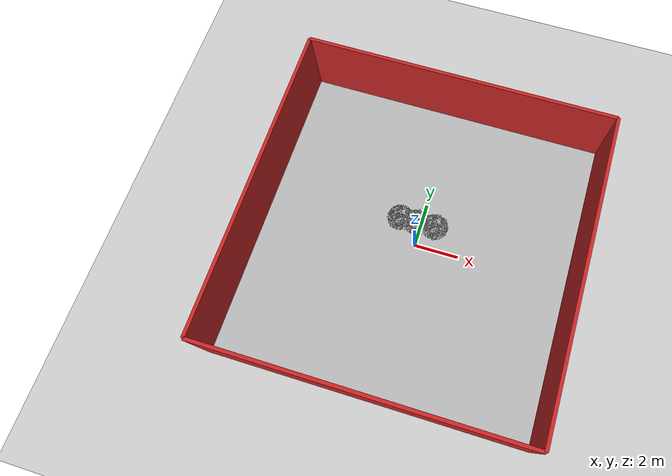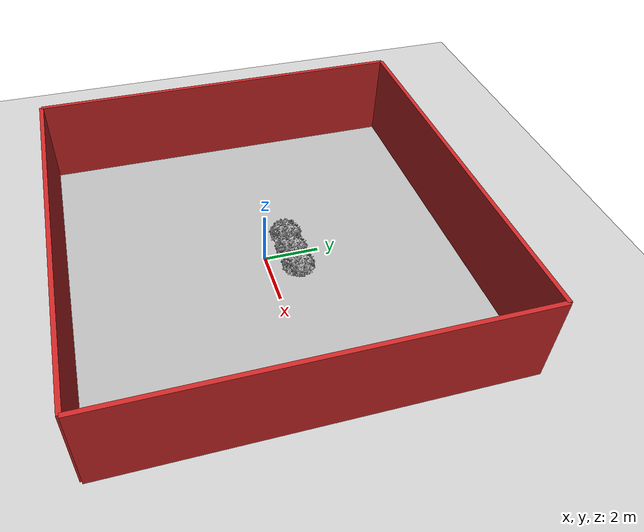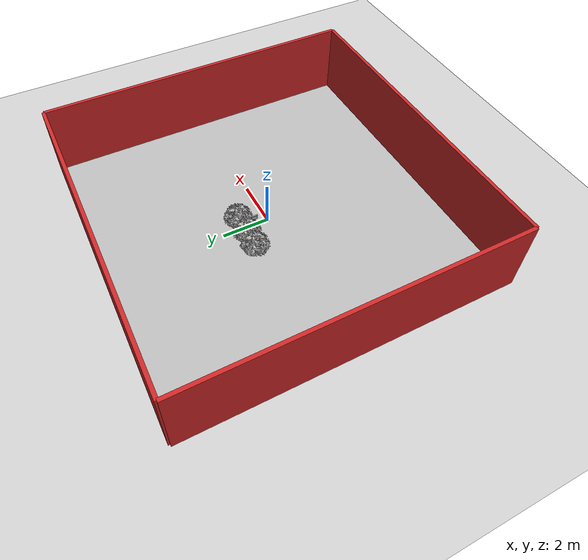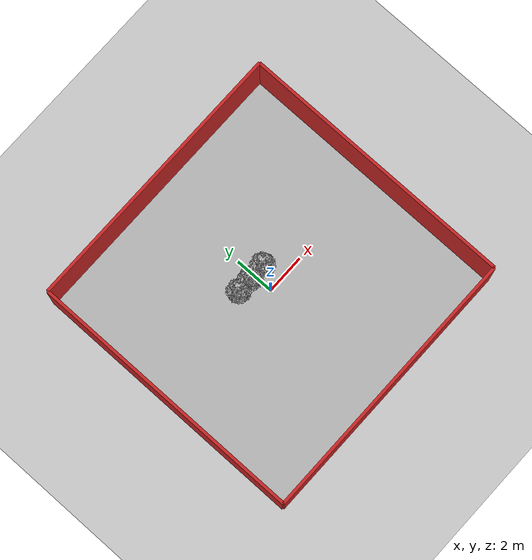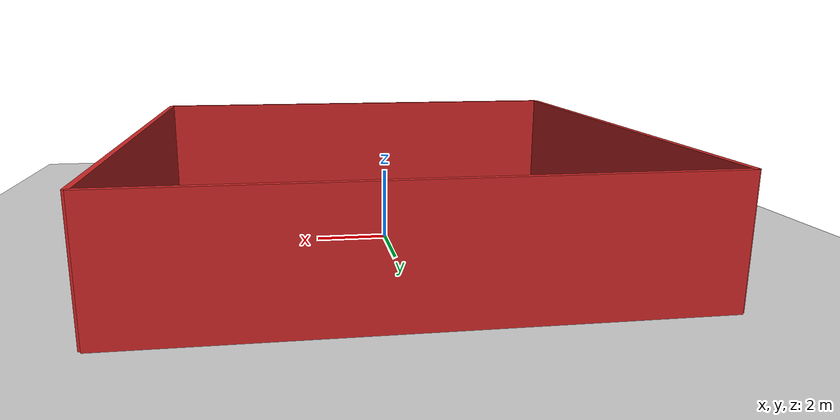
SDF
<sdf version="1.7">
 <world name="default">
  <model name="ground_plane">
   <static>1</static>
   <link name="link">
    <collision name="collision">
     <geometry><plane><normal>0 0 1</normal><size>100 100</size></plane></geometry>
     <surface>
      <contact><collide_bitmask>65535</collide_bitmask></contact>
      <friction><ode><mu>100</mu><mu2>50</mu2></ode></friction>
     </surface>
    </collision>
    <visual name="visual">
     <cast_shadows>0</cast_shadows>
     <geometry><plane><normal>0 0 1</normal><size>100 100</size></plane></geometry>
     <material>
      <script><uri>file://media/materials/scripts/gazebo.material</uri><name>Gazebo/Grey</name></script>
     </material>
    </visual>
   </link>
  </model>
  <model name="paredladrillo">
   <pose>-0.015788 -0.036133 0 0 -0 0</pose>
   <link name="Wall_0">
    <collision name="Wall_0_Collision">
     <geometry><box><size>14 0.15 4</size></box></geometry>
     <pose>0 0 1.25 0 -0 0</pose>
    </collision>
    <visual name="Wall_0_Visual">
     <pose>0 0 1.25 0 -0 0</pose>
     <geometry><box><size>14 0.15 4</size></box></geometry>
     <material>
      <script>
       <uri>model://paredladrillo/materials/scripts</uri>
       <uri>model://paredladrillo/materials/textures</uri>
       <name>textur/pared</name>
      </script>
      <ambient>1 1 1 1</ambient>
     </material>
     <meta><layer>0</layer></meta>
    </visual>
    <pose>-7 -0 0 0 -0 1.5708</pose>
   </link>
   <link name="Wall_1">
    <collision name="Wall_1_Collision">
     <geometry><box><size>14 0.15 4</size></box></geometry>
     <pose>0 0 1.25 0 -0 0</pose>
    </collision>
    <visual name="Wall_1_Visual">
     <pose>0 0 1.25 0 -0 0</pose>
     <geometry><box><size>14 0.15 4</size></box></geometry>
     <material>
      <script>
       <uri>model://paredladrillo/materials/scripts</uri>
       <uri>model://paredladrillo/materials/textures</uri>
       <name>textur/pared</name>
      </script>
      <ambient>1 1 1 1</ambient>
     </material>
     <meta><layer>0</layer></meta>
    </visual>
    <pose>1e-06 7 0 0 -0 0</pose>
   </link>
   <link name="Wall_2">
    <collision name="Wall_2_Collision">
     <geometry><box><size>14 0.15 4</size></box></geometry>
     <pose>0 0 1.25 0 -0 0</pose>
    </collision>
    <visual name="Wall_2_Visual">
     <pose>0 0 1.25 0 -0 0</pose>
     <geometry><box><size>14 0.15 4</size></box></geometry>
     <material>
      <script>
       <uri>model://paredladrillo/materials/scripts</uri>
       <uri>model://paredladrillo/materials/textures</uri>
       <name>textur/pared</name>
      </script>
      <ambient>1 1 1 1</ambient>
     </material>
     <meta><layer>0</layer></meta>
    </visual>
    <pose>7 -0 0 0 -0 -1.5708</pose>
   </link>
   <link name="Wall_3">
    <collision name="Wall_3_Collision">
     <geometry><box><size>14 0.15 4</size></box></geometry>
     <pose>0 0 1.25 0 -0 0</pose>
    </collision>
    <visual name="Wall_3_Visual">
     <pose>0 0 1.25 0 -0 0</pose>
     <geometry><box><size>14 0.15 4</size></box></geometry>
     <material>
      <script>
       <uri>model://paredladrillo/materials/scripts</uri>
       <uri>model://paredladrillo/materials/textures</uri>
       <name>textur/pared</name>
      </script>
      <ambient>1 1 1 1</ambient>
     </material>
     <meta><layer>0</layer></meta>
    </visual>
    <pose>1e-06 -7 0 0 -0 3.14159</pose>
   </link>
   <static>1</static>
  </model>
  <model name="abbfre_0">
   <link name="link_0">
    <inertial>
     <mass>1</mass>
     <inertia>
      <ixx>0.166667</ixx>
      <ixy>0</ixy>
      <ixz>0</ixz>
      <iyy>0.166667</iyy>
      <iyz>0</iyz>
      <izz>0.166667</izz>
     </inertia>
    </inertial>
    <pose>0 0 -0 1.60917 -0 0</pose>
    <visual name="visual">
     <geometry><mesh><uri>model://abbfre/meshes/arbufres.obj</uri><scale>1 1 1</scale></mesh></geometry>
    </visual>
    <collision name="collision">
     <geometry><mesh><uri>model://abbfre/meshes/arbufres.obj</uri><scale>1 1 1</scale></mesh></geometry>
     <surface>
      <friction>
       <ode><mu>1</mu><mu2>1</mu2><fdir1>0 0 0</fdir1><slip1>0</slip1><slip2>0</slip2></ode>
       <torsional>
        <coefficient>1</coefficient>
        <patch_radius>0</patch_radius>
        <surface_radius>0</surface_radius>
        <use_patch_radius>1</use_patch_radius>
        <ode><slip>0</slip></ode>
       </torsional>
      </friction>
      <bounce><restitution_coefficient>0</restitution_coefficient><threshold>1e+06</threshold></bounce>
      <contact>
       <collide_without_contact>0</collide_without_contact>
       <collide_without_contact_bitmask>1</collide_without_contact_bitmask>
       <collide_bitmask>1</collide_bitmask>
       <ode>
        <soft_cfm>0</soft_cfm>
        <soft_erp>0.2</soft_erp>
        <kp>1e+13</kp>
        <kd>1</kd>
        <max_vel>0.01</max_vel>
        <min_depth>0</min_depth>
       </ode>
       <bullet>
        <split_impulse>1</split_impulse>
        <split_impulse_penetration_threshold>-0.01</split_impulse_penetration_threshold>
        <soft_cfm>0</soft_cfm>
        <soft_erp>0.2</soft_erp>
        <kp>1e+13</kp>
        <kd>1</kd>
       </bullet>
      </contact>
     </surface>
    </collision>
   </link>
   <static>1</static>
   <pose>-0.187908 1.17604 0 0 -0 0</pose>
  </model>
  <model name="letrero_chocho">
   <link name="link_0">
    <inertial>
     <mass>0.0543151</mass>
     <inertia>
      <ixx>4.90351e-06</ixx>
      <ixy>0</ixy>
      <ixz>0</ixz>
      <iyy>4.90351e-06</iyy>
      <iyz>0</iyz>
      <izz>1.12837e-07</izz>
     </inertia>
    </inertial>
    <pose>0.002515 0.005109 0.153562 0 -0 0</pose>
    <visual name="visual">
     <geometry><cylinder><radius>0.0203836</radius><length>0.327243</length></cylinder></geometry>
     <material>
      <lighting>1</lighting>
      <script>
       <uri>model://letrero_chocho/madera/scripts</uri>
       <uri>model://letrero_chocho/madera/textures</uri>
       <name>textur/madera</name>
      </script>
      <shader type="pixel"/>
      <emissive>0 0 0 1</emissive>
     </material>
    </visual>
    <collision name="collision">
     <geometry><cylinder><radius>0.020384</radius><length>0.327243</length></cylinder></geometry>
     <surface>
      <friction>
       <ode><mu>1</mu><mu2>1</mu2><fdir1>0 0 0</fdir1><slip1>0</slip1><slip2>0</slip2></ode>
       <torsional>
        <coefficient>1</coefficient>
        <patch_radius>0</patch_radius>
        <surface_radius>0</surface_radius>
        <use_patch_radius>1</use_patch_radius>
        <ode><slip>0</slip></ode>
       </torsional>
      </friction>
      <bounce><restitution_coefficient>0</restitution_coefficient><threshold>1e+06</threshold></bounce>
      <contact>
       <collide_without_contact>0</collide_without_contact>
       <collide_without_contact_bitmask>1</collide_without_contact_bitmask>
       <collide_bitmask>1</collide_bitmask>
       <ode>
        <soft_cfm>0</soft_cfm>
        <soft_erp>0.2</soft_erp>
        <kp>1e+13</kp>
        <kd>1</kd>
        <max_vel>0.01</max_vel>
        <min_depth>0</min_depth>
       </ode>
       <bullet>
        <split_impulse>1</split_impulse>
        <split_impulse_penetration_threshold>-0.01</split_impulse_penetration_threshold>
        <soft_cfm>0</soft_cfm>
        <soft_erp>0.2</soft_erp>
        <kp>1e+13</kp>
        <kd>1</kd>
       </bullet>
      </contact>
     </surface>
    </collision>
   </link>
   <link name="link_1">
    <inertial>
     <mass>0.00299633</mass>
     <inertia>
      <ixx>1.27855e-05</ixx>
      <ixy>0</ixy>
      <ixz>0</ixz>
      <iyy>3.42923e-05</iyy>
      <iyz>0</iyz>
      <izz>2.25402e-05</izz>
     </inertia>
    </inertial>
    <pose>-0.001542 0.002452 0.422031 0 -0 0</pose>
    <visual name="visual">
     <geometry><box><size>0.296988 0.04549 0.221665</size></box></geometry>
     <material>
      <lighting>1</lighting>
      <script>
       <uri>model://letrero_chocho/madera/scripts</uri>
       <uri>model://letrero_chocho/madera/textures</uri>
       <name>textur/madera</name>
      </script>
      <shader type="pixel"/>
      <emissive>0 0 0 1</emissive>
     </material>
    </visual>
    <collision name="collision">
     <geometry><box><size>0.296988 0.04549 0.221665</size></box></geometry>
     <surface>
      <friction>
       <ode><mu>1</mu><mu2>1</mu2><fdir1>0 0 0</fdir1><slip1>0</slip1><slip2>0</slip2></ode>
       <torsional>
        <coefficient>1</coefficient>
        <patch_radius>0</patch_radius>
        <surface_radius>0</surface_radius>
        <use_patch_radius>1</use_patch_radius>
        <ode><slip>0</slip></ode>
       </torsional>
      </friction>
      <bounce><restitution_coefficient>0</restitution_coefficient><threshold>1e+06</threshold></bounce>
      <contact>
       <collide_without_contact>0</collide_without_contact>
       <collide_without_contact_bitmask>1</collide_without_contact_bitmask>
       <collide_bitmask>1</collide_bitmask>
       <ode>
        <soft_cfm>0</soft_cfm>
        <soft_erp>0.2</soft_erp>
        <kp>1e+13</kp>
        <kd>1</kd>
        <max_vel>0.01</max_vel>
        <min_depth>0</min_depth>
       </ode>
       <bullet>
        <split_impulse>1</split_impulse>
        <split_impulse_penetration_threshold>-0.01</split_impulse_penetration_threshold>
        <soft_cfm>0</soft_cfm>
        <soft_erp>0.2</soft_erp>
        <kp>1e+13</kp>
        <kd>1</kd>
       </bullet>
      </contact>
     </surface>
    </collision>
   </link>
   <link name="link_2">
    <inertial>
     <mass>0.00173577</mass>
     <inertia>
      <ixx>4.23206e-06</ixx>
      <ixy>0</ixy>
      <ixz>0</ixz>
      <iyy>1.03921e-05</iyy>
      <iyz>0</iyz>
      <izz>7.37287e-06</izz>
     </inertia>
    </inertial>
    <pose>-0.010225 0.002657 0.421501 0 -0 0</pose>
    <visual name="visual">
     <geometry><box><size>0.216284 0.064749 0.15832</size></box></geometry>
     <material>
      <lighting>1</lighting>
      <script>
       <uri>model://letrero_chocho/materials/scripts</uri>
       <uri>model://letrero_chocho/materials/textures</uri>
       <name>textur/cho</name>
      </script>
      <shader type="pixel"/>
      <emissive>0 0 0 1</emissive>
     </material>
    </visual>
    <collision name="collision">
     <geometry><box><size>0.216284 0.064749 0.15832</size></box></geometry>
     <surface>
      <friction>
       <ode><mu>1</mu><mu2>1</mu2><fdir1>0 0 0</fdir1><slip1>0</slip1><slip2>0</slip2></ode>
       <torsional>
        <coefficient>1</coefficient>
        <patch_radius>0</patch_radius>
        <surface_radius>0</surface_radius>
        <use_patch_radius>1</use_patch_radius>
        <ode><slip>0</slip></ode>
       </torsional>
      </friction>
      <bounce><restitution_coefficient>0</restitution_coefficient><threshold>1e+06</threshold></bounce>
      <contact>
       <collide_without_contact>0</collide_without_contact>
       <collide_without_contact_bitmask>1</collide_without_contact_bitmask>
       <collide_bitmask>1</collide_bitmask>
       <ode>
        <soft_cfm>0</soft_cfm>
        <soft_erp>0.2</soft_erp>
        <kp>1e+13</kp>
        <kd>1</kd>
        <max_vel>0.01</max_vel>
        <min_depth>0</min_depth>
       </ode>
       <bullet>
        <split_impulse>1</split_impulse>
        <split_impulse_penetration_threshold>-0.01</split_impulse_penetration_threshold>
        <soft_cfm>0</soft_cfm>
        <soft_erp>0.2</soft_erp>
        <kp>1e+13</kp>
        <kd>1</kd>
       </bullet>
      </contact>
     </surface>
    </collision>
   </link>
   <joint name="link_0_JOINT_1" type="fixed">
    <parent>link_0</parent>
    <child>link_1</child>
    <physics>
     <ode><limit><cfm>0</cfm><erp>0.2</erp></limit><suspension><cfm>0</cfm><erp>0.2</erp></suspension></ode>
    </physics>
   </joint>
   <joint name="link_0_JOINT_2" type="fixed">
    <parent>link_0</parent>
    <child>link_2</child>
    <physics>
     <ode><limit><cfm>0</cfm><erp>0.2</erp></limit><suspension><cfm>0</cfm><erp>0.2</erp></suspension></ode>
    </physics>
   </joint>
   <static>1</static>
   <pose>0.037926 0.587925 0 0 0 -1.56006</pose>
  </model>
  <model name="piso_plano">
   <link name="link_0">
    <inertial>
     <mass>14.2171</mass>
     <inertia><ixx>310.23</ixx><ixy>0</ixy><ixz>0</ixz><iyy>311.692</iyy><iyz>0</iyz><izz>621.915</izz></inertia>
    </inertial>
    <visual name="visual">
     <geometry><box><size>14 14 0.024508</size></box></geometry>
     <material>
      <lighting>1</lighting>
      <script>
       <uri>model://piso_plano/materials/scripts</uri>
       <uri>model://piso_plano/materials/textures</uri>
       <name>textur/pis</name>
      </script>
      <shader type="pixel"/>
     </material>
    </visual>
    <collision name="collision">
     <geometry><box><size>14 14 0.024508</size></box></geometry>
     <surface>
      <friction>
       <ode><mu>1</mu><mu2>1</mu2><fdir1>0 0 0</fdir1><slip1>0</slip1><slip2>0</slip2></ode>
       <torsional>
        <coefficient>1</coefficient>
        <patch_radius>0</patch_radius>
        <surface_radius>0</surface_radius>
        <use_patch_radius>1</use_patch_radius>
        <ode><slip>0</slip></ode>
       </torsional>
      </friction>
      <bounce><restitution_coefficient>0</restitution_coefficient><threshold>1e+06</threshold></bounce>
      <contact>
       <collide_without_contact>0</collide_without_contact>
       <collide_without_contact_bitmask>1</collide_without_contact_bitmask>
       <collide_bitmask>1</collide_bitmask>
       <ode>
        <soft_cfm>0</soft_cfm>
        <soft_erp>0.2</soft_erp>
        <kp>1e+13</kp>
        <kd>1</kd>
        <max_vel>0.01</max_vel>
        <min_depth>0</min_depth>
       </ode>
       <bullet>
        <split_impulse>1</split_impulse>
        <split_impulse_penetration_threshold>-0.01</split_impulse_penetration_threshold>
        <soft_cfm>0</soft_cfm>
        <soft_erp>0.2</soft_erp>
        <kp>1e+13</kp>
        <kd>1</kd>
       </bullet>
      </contact>
     </surface>
    </collision>
   </link>
   <static>1</static>
   <pose>-0.014501 -0.045869 0 0 -0 0</pose>
  </model>
 </world>
</sdf>
